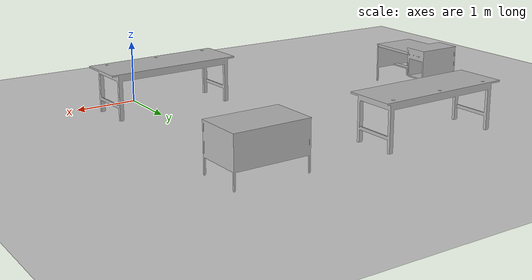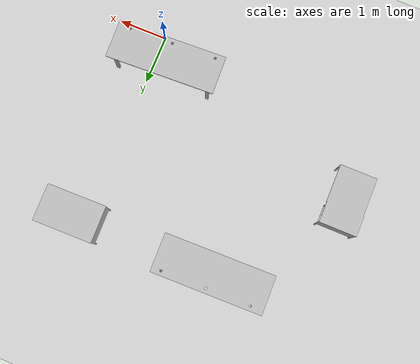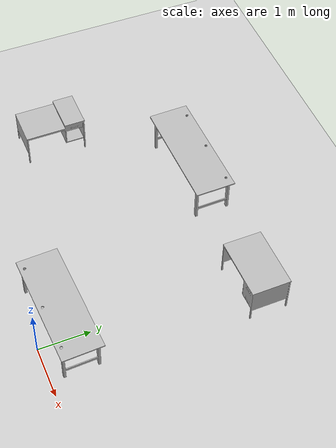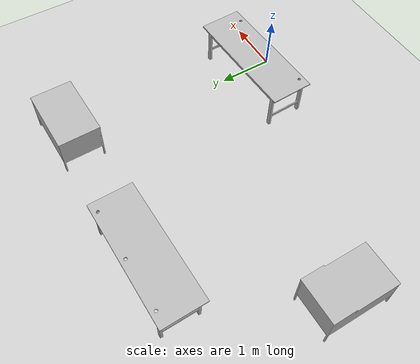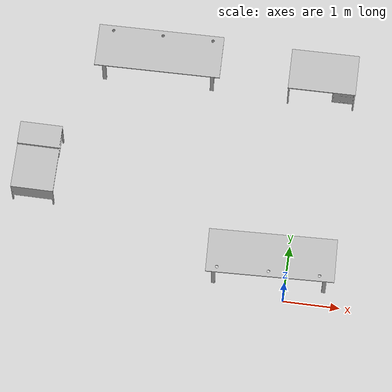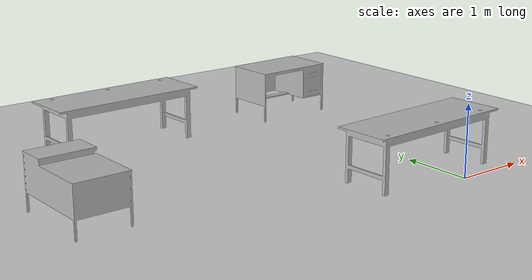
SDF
<sdf version="1.4">
 <world name="default">
  <model name="gplane">
   <link name="body">
    <collision name="gplane_coll">
     <geometry><plane><normal>0 0 1</normal><size>25 25</size></plane></geometry>
     <surface><contact><ode><kp>1e+06</kp><kd>1</kd></ode></contact></surface>
     <laser_retro>2000</laser_retro>
    </collision>
    <visual name="gplane_vis">
     <geometry><plane><normal>0 0 1</normal><size>25 25</size></plane></geometry>
     <material>
      <script>
       <uri>model://base_materials/carpet/scripts</uri>
       <uri>model://base_materials/carpet/textures</uri>
       <name>carpet/carpet01</name>
      </script>
     </material>
     <cast_shadows>0</cast_shadows>
    </visual>
    <velocity_decay><linear>0</linear><angular>0</angular></velocity_decay>
   </link>
   <static>1</static>
  </model>
  <model name="Table_01_1">
   <link name="link_0">
    <inertial>
     <mass>14</mass>
     <inertia>
      <ixx>0.166667</ixx>
      <ixy>0</ixy>
      <ixz>0</ixz>
      <iyy>0.166667</iyy>
      <iyz>0</iyz>
      <izz>0.166667</izz>
     </inertia>
    </inertial>
    <visual name="visual">
     <geometry><mesh><uri>model://BioRoboticsLab/meshes/Table_01.dae</uri><scale>1 1 1</scale></mesh></geometry>
     <material><lighting>1</lighting><shader type="pixel"/></material>
    </visual>
    <collision name="collision">
     <geometry><mesh><uri>model://BioRoboticsLab/meshes/Table_01.dae</uri><scale>1 1 1</scale></mesh></geometry>
     <surface>
      <friction>
       <ode><mu>1</mu><mu2>1</mu2><fdir1>0 0 0</fdir1><slip1>0</slip1><slip2>0</slip2></ode>
       <torsional>
        <coefficient>1</coefficient>
        <patch_radius>0</patch_radius>
        <surface_radius>0</surface_radius>
        <use_patch_radius>1</use_patch_radius>
        <ode><slip>0</slip></ode>
       </torsional>
      </friction>
      <bounce><restitution_coefficient>0</restitution_coefficient><threshold>1e+06</threshold></bounce>
      <contact>
       <collide_without_contact>0</collide_without_contact>
       <collide_without_contact_bitmask>1</collide_without_contact_bitmask>
       <collide_bitmask>1</collide_bitmask>
       <ode>
        <soft_cfm>0</soft_cfm>
        <soft_erp>0.2</soft_erp>
        <kp>1e+13</kp>
        <kd>1</kd>
        <max_vel>0.01</max_vel>
        <min_depth>0</min_depth>
       </ode>
       <bullet>
        <split_impulse>1</split_impulse>
        <split_impulse_penetration_threshold>-0.01</split_impulse_penetration_threshold>
        <soft_cfm>0</soft_cfm>
        <soft_erp>0.2</soft_erp>
        <kp>1e+13</kp>
        <kd>1</kd>
       </bullet>
      </contact>
     </surface>
    </collision>
   </link>
   <static>1</static>
   <pose>-2.75235 4.08623 0 0 0 -3.11955</pose>
  </model>
  <model name="Table_01_2">
   <link name="link_0">
    <inertial>
     <mass>14</mass>
     <inertia>
      <ixx>0.166667</ixx>
      <ixy>0</ixy>
      <ixz>0</ixz>
      <iyy>0.166667</iyy>
      <iyz>0</iyz>
      <izz>0.166667</izz>
     </inertia>
    </inertial>
    <visual name="visual">
     <geometry><mesh><uri>model://BioRoboticsLab/meshes/Table_01.dae</uri><scale>1 1 1</scale></mesh></geometry>
     <material><lighting>1</lighting><shader type="pixel"/></material>
    </visual>
    <collision name="collision">
     <geometry><mesh><uri>model://BioRoboticsLab/meshes/Table_01.dae</uri><scale>1 1 1</scale></mesh></geometry>
     <surface>
      <friction>
       <ode><mu>1</mu><mu2>1</mu2><fdir1>0 0 0</fdir1><slip1>0</slip1><slip2>0</slip2></ode>
       <torsional>
        <coefficient>1</coefficient>
        <patch_radius>0</patch_radius>
        <surface_radius>0</surface_radius>
        <use_patch_radius>1</use_patch_radius>
        <ode><slip>0</slip></ode>
       </torsional>
      </friction>
      <bounce><restitution_coefficient>0</restitution_coefficient><threshold>1e+06</threshold></bounce>
      <contact>
       <collide_without_contact>0</collide_without_contact>
       <collide_without_contact_bitmask>1</collide_without_contact_bitmask>
       <collide_bitmask>1</collide_bitmask>
       <ode>
        <soft_cfm>0</soft_cfm>
        <soft_erp>0.2</soft_erp>
        <kp>1e+13</kp>
        <kd>1</kd>
        <max_vel>0.01</max_vel>
        <min_depth>0</min_depth>
       </ode>
       <bullet>
        <split_impulse>1</split_impulse>
        <split_impulse_penetration_threshold>-0.01</split_impulse_penetration_threshold>
        <soft_cfm>0</soft_cfm>
        <soft_erp>0.2</soft_erp>
        <kp>1e+13</kp>
        <kd>1</kd>
       </bullet>
      </contact>
     </surface>
    </collision>
   </link>
   <static>1</static>
   <pose>-0.289226 0.553105 0 0 -0 0.04275</pose>
  </model>
  <model name="Desk_04_1">
   <link name="link_0">
    <inertial>
     <mass>15</mass>
     <inertia>
      <ixx>0.166667</ixx>
      <ixy>0</ixy>
      <ixz>0</ixz>
      <iyy>0.166667</iyy>
      <iyz>0</iyz>
      <izz>0.166667</izz>
     </inertia>
    </inertial>
    <visual name="visual">
     <geometry><mesh><uri>model://BioRoboticsLab/meshes/Desk_04.dae</uri><scale>1 1 1</scale></mesh></geometry>
     <material><lighting>1</lighting><shader type="pixel"/></material>
    </visual>
    <collision name="collision">
     <geometry><mesh><uri>model://BioRoboticsLab/meshes/Desk_04.dae</uri><scale>1 1 1</scale></mesh></geometry>
     <surface>
      <friction>
       <ode><mu>1</mu><mu2>1</mu2><fdir1>0 0 0</fdir1><slip1>0</slip1><slip2>0</slip2></ode>
       <torsional>
        <coefficient>1</coefficient>
        <patch_radius>0</patch_radius>
        <surface_radius>0</surface_radius>
        <use_patch_radius>1</use_patch_radius>
        <ode><slip>0</slip></ode>
       </torsional>
      </friction>
      <bounce><restitution_coefficient>0</restitution_coefficient><threshold>1e+06</threshold></bounce>
      <contact>
       <collide_without_contact>0</collide_without_contact>
       <collide_without_contact_bitmask>1</collide_without_contact_bitmask>
       <collide_bitmask>1</collide_bitmask>
       <ode>
        <soft_cfm>0</soft_cfm>
        <soft_erp>0.2</soft_erp>
        <kp>1e+13</kp>
        <kd>1</kd>
        <max_vel>0.01</max_vel>
        <min_depth>0</min_depth>
       </ode>
       <bullet>
        <split_impulse>1</split_impulse>
        <split_impulse_penetration_threshold>-0.01</split_impulse_penetration_threshold>
        <soft_cfm>0</soft_cfm>
        <soft_erp>0.2</soft_erp>
        <kp>1e+13</kp>
        <kd>1</kd>
       </bullet>
      </contact>
     </surface>
    </collision>
   </link>
   <static>1</static>
   <pose>0.190812 4.08111 0 0 0 -3.12362</pose>
  </model>
  <model name="Desk_02_1">
   <link name="link_0">
    <inertial>
     <mass>19</mass>
     <inertia>
      <ixx>0.166667</ixx>
      <ixy>0</ixy>
      <ixz>0</ixz>
      <iyy>0.166667</iyy>
      <iyz>0</iyz>
      <izz>0.166667</izz>
     </inertia>
    </inertial>
    <visual name="visual">
     <geometry><mesh><uri>model://BioRoboticsLab/meshes/Desk_02.dae</uri><scale>1 1 1</scale></mesh></geometry>
     <material><lighting>1</lighting><shader type="pixel"/></material>
    </visual>
    <collision name="collision">
     <geometry><mesh><uri>model://BioRoboticsLab/meshes/Desk_02.dae</uri><scale>1 1 1</scale></mesh></geometry>
     <surface>
      <friction>
       <ode><mu>1</mu><mu2>1</mu2><fdir1>0 0 0</fdir1><slip1>0</slip1><slip2>0</slip2></ode>
       <torsional>
        <coefficient>1</coefficient>
        <patch_radius>0</patch_radius>
        <surface_radius>0</surface_radius>
        <use_patch_radius>1</use_patch_radius>
        <ode><slip>0</slip></ode>
       </torsional>
      </friction>
      <bounce><restitution_coefficient>0</restitution_coefficient><threshold>1e+06</threshold></bounce>
      <contact>
       <collide_without_contact>0</collide_without_contact>
       <collide_without_contact_bitmask>1</collide_without_contact_bitmask>
       <collide_bitmask>1</collide_bitmask>
       <ode>
        <soft_cfm>0</soft_cfm>
        <soft_erp>0.2</soft_erp>
        <kp>1e+13</kp>
        <kd>1</kd>
        <max_vel>0.01</max_vel>
        <min_depth>0</min_depth>
       </ode>
       <bullet>
        <split_impulse>1</split_impulse>
        <split_impulse_penetration_threshold>-0.01</split_impulse_penetration_threshold>
        <soft_cfm>0</soft_cfm>
        <soft_erp>0.2</soft_erp>
        <kp>1e+13</kp>
        <kd>1</kd>
       </bullet>
      </contact>
     </surface>
    </collision>
   </link>
   <static>1</static>
   <pose>-4.60592 1.96976 0 0 0 -1.56646</pose>
  </model>
 </world>
</sdf>
